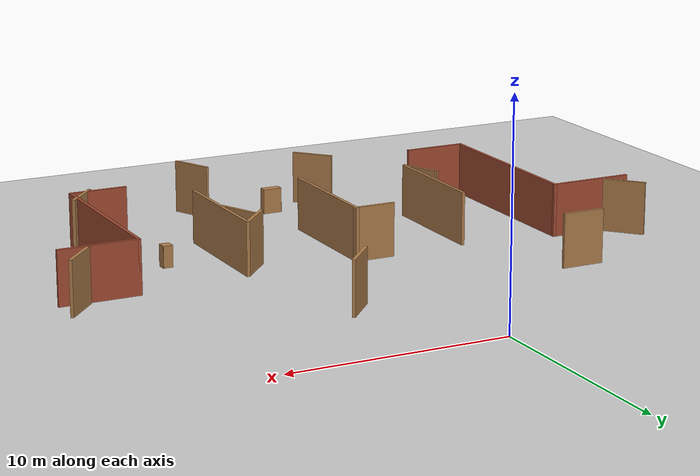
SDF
<sdf version="1.6">
 <world name="default">
  <model name="ground_plane">
   <static>1</static>
   <link name="link">
    <collision name="collision">
     <geometry><plane><normal>0 0 1</normal><size>100 100</size></plane></geometry>
     <surface><friction><ode><mu>100</mu><mu2>50</mu2></ode></friction></surface>
    </collision>
    <visual name="visual">
     <cast_shadows>0</cast_shadows>
     <geometry><plane><normal>0 0 1</normal><size>100 100</size></plane></geometry>
     <material>
      <script><uri>file://media/materials/scripts/gazebo.material</uri><name>Gazebo/Grey</name></script>
     </material>
    </visual>
   </link>
  </model>
  <model name="bookshelf">
   <static>1</static>
   <link name="link">
    <inertial><mass>1</mass></inertial>
    <collision name="back">
     <pose>0 0.005 0.6 0 -0 0</pose>
     <geometry><box><size>0.9 0.01 1.2</size></box></geometry>
    </collision>
    <visual name="visual1">
     <pose>0 0.005 0.6 0 -0 0</pose>
     <geometry><box><size>0.9 0.01 1.2</size></box></geometry>
     <material>
      <script><uri>file://media/materials/scripts/gazebo.material</uri><name>Gazebo/Wood</name></script>
     </material>
    </visual>
    <collision name="left_side">
     <pose>0.45 -0.195 0.6 0 -0 0</pose>
     <geometry><box><size>0.02 0.4 1.2</size></box></geometry>
    </collision>
    <visual name="visual2">
     <pose>0.45 -0.195 0.6 0 -0 0</pose>
     <geometry><box><size>0.02 0.4 1.2</size></box></geometry>
     <material>
      <script><uri>file://media/materials/scripts/gazebo.material</uri><name>Gazebo/Wood</name></script>
     </material>
    </visual>
    <collision name="right_side">
     <pose>-0.45 -0.195 0.6 0 -0 0</pose>
     <geometry><box><size>0.02 0.4 1.2</size></box></geometry>
    </collision>
    <visual name="visual3">
     <pose>-0.45 -0.195 0.6 0 -0 0</pose>
     <geometry><box><size>0.02 0.4 1.2</size></box></geometry>
     <material>
      <script><uri>file://media/materials/scripts/gazebo.material</uri><name>Gazebo/Wood</name></script>
     </material>
    </visual>
    <collision name="bottom">
     <pose>0 -0.195 0.03 0 -0 0</pose>
     <geometry><box><size>0.88 0.4 0.06</size></box></geometry>
    </collision>
    <visual name="visual4">
     <pose>0 -0.195 0.03 0 -0 0</pose>
     <geometry><box><size>0.88 0.4 0.06</size></box></geometry>
     <material>
      <script><uri>file://media/materials/scripts/gazebo.material</uri><name>Gazebo/Wood</name></script>
     </material>
    </visual>
    <collision name="top">
     <pose>0 -0.195 1.19 0 -0 0</pose>
     <geometry><box><size>0.88 0.4 0.02</size></box></geometry>
    </collision>
    <visual name="visual5">
     <pose>0 -0.195 1.19 0 -0 0</pose>
     <geometry><box><size>0.88 0.4 0.02</size></box></geometry>
     <material>
      <script><uri>file://media/materials/scripts/gazebo.material</uri><name>Gazebo/Wood</name></script>
     </material>
    </visual>
    <collision name="low_shelf">
     <pose>0 -0.195 0.43 0 -0 0</pose>
     <geometry><box><size>0.88 0.4 0.02</size></box></geometry>
    </collision>
    <visual name="visual6">
     <pose>0 -0.195 0.43 0 -0 0</pose>
     <geometry><box><size>0.88 0.4 0.02</size></box></geometry>
     <material>
      <script><uri>file://media/materials/scripts/gazebo.material</uri><name>Gazebo/Wood</name></script>
     </material>
    </visual>
    <collision name="high_shelf">
     <pose>0 -0.195 0.8 0 -0 0</pose>
     <geometry><box><size>0.88 0.4 0.02</size></box></geometry>
    </collision>
    <visual name="visual7">
     <pose>0 -0.195 0.8 0 -0 0</pose>
     <geometry><box><size>0.88 0.4 0.02</size></box></geometry>
     <material>
      <script><uri>file://media/materials/scripts/gazebo.material</uri><name>Gazebo/Wood</name></script>
     </material>
    </visual>
   </link>
   <pose>0.586546 -21.2596 0 0 -0 0</pose>
  </model>
  <model name="cabinet_3">
   <static>1</static>
   <link name="cabinet_bottom_plate">
    <inertial>
     <pose>0 0 -1 0 -0 0</pose>
     <inertia><ixx>2.05</ixx><ixy>0</ixy><ixz>0</ixz><iyy>2.05</iyy><iyz>0</iyz><izz>2.05</izz></inertia>
     <mass>25</mass>
    </inertial>
    <collision name="cabinet_bottom_plate_geom">
     <pose>0 0 0.01 0 -0 0</pose>
     <geometry><box><size>0.45 0.45 0.02</size></box></geometry>
    </collision>
    <visual name="cabinet_bottom_plate_geom_visual">
     <pose>0 0 0.01 0 -0 0</pose>
     <geometry><box><size>0.45 0.45 0.02</size></box></geometry>
     <material>
      <script><uri>file://media/materials/scripts/gazebo.material</uri><name>Gazebo/Wood</name></script>
     </material>
    </visual>
    <collision name="cabinet_bottom_plate_geom_cabinet_back_plate">
     <pose>0.235 0 0.51 0 -0 0</pose>
     <geometry><box><size>0.02 0.45 1.02</size></box></geometry>
    </collision>
    <visual name="cabinet_bottom_plate_geom_cabinet_back_plate_visual">
     <pose>0.235 0 0.51 0 -0 0</pose>
     <geometry><box><size>0.02 0.45 1.02</size></box></geometry>
     <material>
      <script><uri>file://media/materials/scripts/gazebo.material</uri><name>Gazebo/Wood</name></script>
     </material>
    </visual>
    <collision name="cabinet_bottom_plate_geom_cabinet_left_plate">
     <pose>0 0.235 0.51 0 -0 0</pose>
     <geometry><box><size>0.45 0.02 1.02</size></box></geometry>
    </collision>
    <visual name="cabinet_bottom_plate_geom_cabinet_left_plate_visual">
     <pose>0 0.235 0.51 0 -0 0</pose>
     <geometry><box><size>0.45 0.02 1.02</size></box></geometry>
     <material>
      <script><uri>file://media/materials/scripts/gazebo.material</uri><name>Gazebo/Wood</name></script>
     </material>
    </visual>
    <collision name="cabinet_bottom_plate_geom_cabinet_middle_plate">
     <pose>0 0 0.51 0 -0 0</pose>
     <geometry><box><size>0.45 0.45 0.02</size></box></geometry>
    </collision>
    <visual name="cabinet_bottom_plate_geom_cabinet_middle_plate_visual">
     <pose>0 0 0.51 0 -0 0</pose>
     <geometry><box><size>0.45 0.45 0.02</size></box></geometry>
     <material>
      <script><uri>file://media/materials/scripts/gazebo.material</uri><name>Gazebo/Wood</name></script>
     </material>
    </visual>
    <collision name="cabinet_bottom_plate_geom_cabinet_right_plate">
     <pose>0 -0.235 0.51 0 -0 0</pose>
     <geometry><box><size>0.45 0.02 1.02</size></box></geometry>
    </collision>
    <visual name="cabinet_bottom_plate_geom_cabinet_right_plate_visual">
     <pose>0 -0.235 0.51 0 -0 0</pose>
     <geometry><box><size>0.45 0.02 1.02</size></box></geometry>
     <material>
      <script><uri>file://media/materials/scripts/gazebo.material</uri><name>Gazebo/Wood</name></script>
     </material>
    </visual>
    <collision name="cabinet_bottom_plate_geom_cabinet_top_plate">
     <pose>0 0 1.01 0 -0 0</pose>
     <geometry><box><size>0.45 0.45 0.02</size></box></geometry>
    </collision>
    <visual name="cabinet_bottom_plate_geom_cabinet_top_plate_visual">
     <pose>0 0 1.01 0 -0 0</pose>
     <geometry><box><size>0.45 0.45 0.02</size></box></geometry>
     <material>
      <script><uri>file://media/materials/scripts/gazebo.material</uri><name>Gazebo/Wood</name></script>
     </material>
    </visual>
   </link>
   <pose>0.258671 -14.2311 0 0 -0 0</pose>
  </model>
  <model name="cabinet_5">
   <static>1</static>
   <link name="cabinet_bottom_plate">
    <inertial>
     <pose>0 0 -1 0 -0 0</pose>
     <inertia><ixx>2.05</ixx><ixy>0</ixy><ixz>0</ixz><iyy>2.05</iyy><iyz>0</iyz><izz>2.05</izz></inertia>
     <mass>25</mass>
    </inertial>
    <collision name="cabinet_bottom_plate_geom">
     <pose>0 0 0.01 0 -0 0</pose>
     <geometry><box><size>0.45 0.45 0.02</size></box></geometry>
    </collision>
    <visual name="cabinet_bottom_plate_geom_visual">
     <pose>0 0 0.01 0 -0 0</pose>
     <geometry><box><size>0.45 0.45 0.02</size></box></geometry>
     <material>
      <script><uri>file://media/materials/scripts/gazebo.material</uri><name>Gazebo/Wood</name></script>
     </material>
    </visual>
    <collision name="cabinet_bottom_plate_geom_cabinet_back_plate">
     <pose>0.235 0 0.51 0 -0 0</pose>
     <geometry><box><size>0.02 0.45 1.02</size></box></geometry>
    </collision>
    <visual name="cabinet_bottom_plate_geom_cabinet_back_plate_visual">
     <pose>0.235 0 0.51 0 -0 0</pose>
     <geometry><box><size>0.02 0.45 1.02</size></box></geometry>
     <material>
      <script><uri>file://media/materials/scripts/gazebo.material</uri><name>Gazebo/Wood</name></script>
     </material>
    </visual>
    <collision name="cabinet_bottom_plate_geom_cabinet_left_plate">
     <pose>0 0.235 0.51 0 -0 0</pose>
     <geometry><box><size>0.45 0.02 1.02</size></box></geometry>
    </collision>
    <visual name="cabinet_bottom_plate_geom_cabinet_left_plate_visual">
     <pose>0 0.235 0.51 0 -0 0</pose>
     <geometry><box><size>0.45 0.02 1.02</size></box></geometry>
     <material>
      <script><uri>file://media/materials/scripts/gazebo.material</uri><name>Gazebo/Wood</name></script>
     </material>
    </visual>
    <collision name="cabinet_bottom_plate_geom_cabinet_middle_plate">
     <pose>0 0 0.51 0 -0 0</pose>
     <geometry><box><size>0.45 0.45 0.02</size></box></geometry>
    </collision>
    <visual name="cabinet_bottom_plate_geom_cabinet_middle_plate_visual">
     <pose>0 0 0.51 0 -0 0</pose>
     <geometry><box><size>0.45 0.45 0.02</size></box></geometry>
     <material>
      <script><uri>file://media/materials/scripts/gazebo.material</uri><name>Gazebo/Wood</name></script>
     </material>
    </visual>
    <collision name="cabinet_bottom_plate_geom_cabinet_right_plate">
     <pose>0 -0.235 0.51 0 -0 0</pose>
     <geometry><box><size>0.45 0.02 1.02</size></box></geometry>
    </collision>
    <visual name="cabinet_bottom_plate_geom_cabinet_right_plate_visual">
     <pose>0 -0.235 0.51 0 -0 0</pose>
     <geometry><box><size>0.45 0.02 1.02</size></box></geometry>
     <material>
      <script><uri>file://media/materials/scripts/gazebo.material</uri><name>Gazebo/Wood</name></script>
     </material>
    </visual>
    <collision name="cabinet_bottom_plate_geom_cabinet_top_plate">
     <pose>0 0 1.01 0 -0 0</pose>
     <geometry><box><size>0.45 0.45 0.02</size></box></geometry>
    </collision>
    <visual name="cabinet_bottom_plate_geom_cabinet_top_plate_visual">
     <pose>0 0 1.01 0 -0 0</pose>
     <geometry><box><size>0.45 0.45 0.02</size></box></geometry>
     <material>
      <script><uri>file://media/materials/scripts/gazebo.material</uri><name>Gazebo/Wood</name></script>
     </material>
    </visual>
   </link>
   <pose>8.54924 -15.2954 0 0 -0 0</pose>
  </model>
  <model name="test_maze">
   <link name="Wall_111">
    <pose>-0.301502 -15.3165 0 0 0 -1.5708</pose>
    <visual name="Wall_111_Visual">
     <pose>0 0 1.25 0 -0 0</pose>
     <geometry><box><size>6 0.15 2.5</size></box></geometry>
     <material>
      <script><uri>file://media/materials/scripts/gazebo.material</uri><name>Gazebo/Wood</name></script>
      <ambient>1 1 1 1</ambient>
      <shader type="pixel"/>
     </material>
     <meta><layer>0</layer></meta>
    </visual>
    <collision name="Wall_111_Collision">
     <pose>0 0 1.25 0 -0 0</pose>
     <geometry><box><size>6 0.15 2.5</size></box></geometry>
     <surface>
      <friction>
       <ode><mu>1</mu><mu2>1</mu2><fdir1>0 0 0</fdir1><slip1>0</slip1><slip2>0</slip2></ode>
       <torsional>
        <coefficient>1</coefficient>
        <patch_radius>0</patch_radius>
        <surface_radius>0</surface_radius>
        <use_patch_radius>1</use_patch_radius>
        <ode><slip>0</slip></ode>
       </torsional>
      </friction>
      <bounce><restitution_coefficient>0</restitution_coefficient><threshold>1e+06</threshold></bounce>
      <contact>
       <collide_without_contact>0</collide_without_contact>
       <collide_without_contact_bitmask>1</collide_without_contact_bitmask>
       <collide_bitmask>1</collide_bitmask>
       <ode>
        <soft_cfm>0</soft_cfm>
        <soft_erp>0.2</soft_erp>
        <kp>1e+13</kp>
        <kd>1</kd>
        <max_vel>0.01</max_vel>
        <min_depth>0</min_depth>
       </ode>
       <bullet>
        <split_impulse>1</split_impulse>
        <split_impulse_penetration_threshold>-0.01</split_impulse_penetration_threshold>
        <soft_cfm>0</soft_cfm>
        <soft_erp>0.2</soft_erp>
        <kp>1e+13</kp>
        <kd>1</kd>
       </bullet>
      </contact>
     </surface>
    </collision>
   </link>
   <link name="Wall_114">
    <pose>-5.8092 -15.3766 0 0 0 -1.5708</pose>
    <visual name="Wall_114_Visual">
     <pose>0 0 1.25 0 -0 0</pose>
     <geometry><box><size>5.75 0.15 2.5</size></box></geometry>
     <material>
      <script><uri>file://media/materials/scripts/gazebo.material</uri><name>Gazebo/Wood</name></script>
      <ambient>1 1 1 1</ambient>
      <shader type="pixel"/>
     </material>
     <meta><layer>0</layer></meta>
    </visual>
    <collision name="Wall_114_Collision">
     <pose>0 0 1.25 0 -0 0</pose>
     <geometry><box><size>5.75 0.15 2.5</size></box></geometry>
     <surface>
      <friction>
       <ode><mu>1</mu><mu2>1</mu2><fdir1>0 0 0</fdir1><slip1>0</slip1><slip2>0</slip2></ode>
       <torsional>
        <coefficient>1</coefficient>
        <patch_radius>0</patch_radius>
        <surface_radius>0</surface_radius>
        <use_patch_radius>1</use_patch_radius>
        <ode><slip>0</slip></ode>
       </torsional>
      </friction>
      <bounce><restitution_coefficient>0</restitution_coefficient><threshold>1e+06</threshold></bounce>
      <contact>
       <collide_without_contact>0</collide_without_contact>
       <collide_without_contact_bitmask>1</collide_without_contact_bitmask>
       <collide_bitmask>1</collide_bitmask>
       <ode>
        <soft_cfm>0</soft_cfm>
        <soft_erp>0.2</soft_erp>
        <kp>1e+13</kp>
        <kd>1</kd>
        <max_vel>0.01</max_vel>
        <min_depth>0</min_depth>
       </ode>
       <bullet>
        <split_impulse>1</split_impulse>
        <split_impulse_penetration_threshold>-0.01</split_impulse_penetration_threshold>
        <soft_cfm>0</soft_cfm>
        <soft_erp>0.2</soft_erp>
        <kp>1e+13</kp>
        <kd>1</kd>
       </bullet>
      </contact>
     </surface>
    </collision>
   </link>
   <link name="Wall_116">
    <pose>4.95745 -15.4576 0 0 0 -1.5708</pose>
    <visual name="Wall_116_Visual">
     <pose>0 0 1.25 0 -0 0</pose>
     <geometry><box><size>6 0.15 2.5</size></box></geometry>
     <material>
      <script><uri>file://media/materials/scripts/gazebo.material</uri><name>Gazebo/Wood</name></script>
      <ambient>1 1 1 1</ambient>
      <shader type="pixel"/>
     </material>
     <meta><layer>0</layer></meta>
    </visual>
    <collision name="Wall_116_Collision">
     <pose>0 0 1.25 0 -0 0</pose>
     <geometry><box><size>6 0.15 2.5</size></box></geometry>
     <surface>
      <friction>
       <ode><mu>1</mu><mu2>1</mu2><fdir1>0 0 0</fdir1><slip1>0</slip1><slip2>0</slip2></ode>
       <torsional>
        <coefficient>1</coefficient>
        <patch_radius>0</patch_radius>
        <surface_radius>0</surface_radius>
        <use_patch_radius>1</use_patch_radius>
        <ode><slip>0</slip></ode>
       </torsional>
      </friction>
      <bounce><restitution_coefficient>0</restitution_coefficient><threshold>1e+06</threshold></bounce>
      <contact>
       <collide_without_contact>0</collide_without_contact>
       <collide_without_contact_bitmask>1</collide_without_contact_bitmask>
       <collide_bitmask>1</collide_bitmask>
       <ode>
        <soft_cfm>0</soft_cfm>
        <soft_erp>0.2</soft_erp>
        <kp>1e+13</kp>
        <kd>1</kd>
        <max_vel>0.01</max_vel>
        <min_depth>0</min_depth>
       </ode>
       <bullet>
        <split_impulse>1</split_impulse>
        <split_impulse_penetration_threshold>-0.01</split_impulse_penetration_threshold>
        <soft_cfm>0</soft_cfm>
        <soft_erp>0.2</soft_erp>
        <kp>1e+13</kp>
        <kd>1</kd>
       </bullet>
      </contact>
     </surface>
    </collision>
   </link>
   <link name="Wall_40">
    <pose>8.85605 -20.475 0 0 -0 0</pose>
    <visual name="Wall_40_Visual">
     <pose>0 0 1.25 0 -0 0</pose>
     <geometry><box><size>2.75 0.15 2.5</size></box></geometry>
     <material>
      <script><uri>file://media/materials/scripts/gazebo.material</uri><name>Gazebo/Bricks</name></script>
      <ambient>1 1 1 1</ambient>
      <shader type="pixel"/>
     </material>
     <meta><layer>0</layer></meta>
    </visual>
    <collision name="Wall_40_Collision">
     <pose>0 0 1.25 0 -0 0</pose>
     <geometry><box><size>2.75 0.15 2.5</size></box></geometry>
     <surface>
      <friction>
       <ode><mu>1</mu><mu2>1</mu2><fdir1>0 0 0</fdir1><slip1>0</slip1><slip2>0</slip2></ode>
       <torsional>
        <coefficient>1</coefficient>
        <patch_radius>0</patch_radius>
        <surface_radius>0</surface_radius>
        <use_patch_radius>1</use_patch_radius>
        <ode><slip>0</slip></ode>
       </torsional>
      </friction>
      <bounce><restitution_coefficient>0</restitution_coefficient><threshold>1e+06</threshold></bounce>
      <contact>
       <collide_without_contact>0</collide_without_contact>
       <collide_without_contact_bitmask>1</collide_without_contact_bitmask>
       <collide_bitmask>1</collide_bitmask>
       <ode>
        <soft_cfm>0</soft_cfm>
        <soft_erp>0.2</soft_erp>
        <kp>1e+13</kp>
        <kd>1</kd>
        <max_vel>0.01</max_vel>
        <min_depth>0</min_depth>
       </ode>
       <bullet>
        <split_impulse>1</split_impulse>
        <split_impulse_penetration_threshold>-0.01</split_impulse_penetration_threshold>
        <soft_cfm>0</soft_cfm>
        <soft_erp>0.2</soft_erp>
        <kp>1e+13</kp>
        <kd>1</kd>
       </bullet>
      </contact>
     </surface>
    </collision>
   </link>
   <link name="Wall_41">
    <pose>10.1561 -16.3 0 0 -0 1.5708</pose>
    <visual name="Wall_41_Visual">
     <pose>0 0 1.25 0 -0 0</pose>
     <geometry><box><size>8.5 0.15 2.5</size></box></geometry>
     <material>
      <script><uri>file://media/materials/scripts/gazebo.material</uri><name>Gazebo/Bricks</name></script>
      <ambient>1 1 1 1</ambient>
      <shader type="pixel"/>
     </material>
     <meta><layer>0</layer></meta>
    </visual>
    <collision name="Wall_41_Collision">
     <pose>0 0 1.25 0 -0 0</pose>
     <geometry><box><size>8.5 0.15 2.5</size></box></geometry>
     <surface>
      <friction>
       <ode><mu>1</mu><mu2>1</mu2><fdir1>0 0 0</fdir1><slip1>0</slip1><slip2>0</slip2></ode>
       <torsional>
        <coefficient>1</coefficient>
        <patch_radius>0</patch_radius>
        <surface_radius>0</surface_radius>
        <use_patch_radius>1</use_patch_radius>
        <ode><slip>0</slip></ode>
       </torsional>
      </friction>
      <bounce><restitution_coefficient>0</restitution_coefficient><threshold>1e+06</threshold></bounce>
      <contact>
       <collide_without_contact>0</collide_without_contact>
       <collide_without_contact_bitmask>1</collide_without_contact_bitmask>
       <collide_bitmask>1</collide_bitmask>
       <ode>
        <soft_cfm>0</soft_cfm>
        <soft_erp>0.2</soft_erp>
        <kp>1e+13</kp>
        <kd>1</kd>
        <max_vel>0.01</max_vel>
        <min_depth>0</min_depth>
       </ode>
       <bullet>
        <split_impulse>1</split_impulse>
        <split_impulse_penetration_threshold>-0.01</split_impulse_penetration_threshold>
        <soft_cfm>0</soft_cfm>
        <soft_erp>0.2</soft_erp>
        <kp>1e+13</kp>
        <kd>1</kd>
       </bullet>
      </contact>
     </surface>
    </collision>
   </link>
   <link name="Wall_42">
    <pose>11.9561 -12.125 0 0 -0 0</pose>
    <visual name="Wall_42_Visual">
     <pose>0 0 1.25 0 -0 0</pose>
     <geometry><box><size>3.75 0.15 2.5</size></box></geometry>
     <material>
      <script><uri>file://media/materials/scripts/gazebo.material</uri><name>Gazebo/Bricks</name></script>
      <ambient>1 1 1 1</ambient>
      <shader type="pixel"/>
     </material>
     <meta><layer>0</layer></meta>
    </visual>
    <collision name="Wall_42_Collision">
     <pose>0 0 1.25 0 -0 0</pose>
     <geometry><box><size>3.75 0.15 2.5</size></box></geometry>
     <surface>
      <friction>
       <ode><mu>1</mu><mu2>1</mu2><fdir1>0 0 0</fdir1><slip1>0</slip1><slip2>0</slip2></ode>
       <torsional>
        <coefficient>1</coefficient>
        <patch_radius>0</patch_radius>
        <surface_radius>0</surface_radius>
        <use_patch_radius>1</use_patch_radius>
        <ode><slip>0</slip></ode>
       </torsional>
      </friction>
      <bounce><restitution_coefficient>0</restitution_coefficient><threshold>1e+06</threshold></bounce>
      <contact>
       <collide_without_contact>0</collide_without_contact>
       <collide_without_contact_bitmask>1</collide_without_contact_bitmask>
       <collide_bitmask>1</collide_bitmask>
       <ode>
        <soft_cfm>0</soft_cfm>
        <soft_erp>0.2</soft_erp>
        <kp>1e+13</kp>
        <kd>1</kd>
        <max_vel>0.01</max_vel>
        <min_depth>0</min_depth>
       </ode>
       <bullet>
        <split_impulse>1</split_impulse>
        <split_impulse_penetration_threshold>-0.01</split_impulse_penetration_threshold>
        <soft_cfm>0</soft_cfm>
        <soft_erp>0.2</soft_erp>
        <kp>1e+13</kp>
        <kd>1</kd>
       </bullet>
      </contact>
     </surface>
    </collision>
   </link>
   <link name="Wall_50">
    <pose>-8.86895 -20.725 0 0 -0 3.14159</pose>
    <visual name="Wall_50_Visual">
     <pose>0 0 1.25 0 -0 0</pose>
     <geometry><box><size>3 0.15 2.5</size></box></geometry>
     <material>
      <script><uri>file://media/materials/scripts/gazebo.material</uri><name>Gazebo/Bricks</name></script>
      <ambient>1 1 1 1</ambient>
      <shader type="pixel"/>
     </material>
     <meta><layer>0</layer></meta>
    </visual>
    <collision name="Wall_50_Collision">
     <pose>0 0 1.25 0 -0 0</pose>
     <geometry><box><size>3 0.15 2.5</size></box></geometry>
     <surface>
      <friction>
       <ode><mu>1</mu><mu2>1</mu2><fdir1>0 0 0</fdir1><slip1>0</slip1><slip2>0</slip2></ode>
       <torsional>
        <coefficient>1</coefficient>
        <patch_radius>0</patch_radius>
        <surface_radius>0</surface_radius>
        <use_patch_radius>1</use_patch_radius>
        <ode><slip>0</slip></ode>
       </torsional>
      </friction>
      <bounce><restitution_coefficient>0</restitution_coefficient><threshold>1e+06</threshold></bounce>
      <contact>
       <collide_without_contact>0</collide_without_contact>
       <collide_without_contact_bitmask>1</collide_without_contact_bitmask>
       <collide_bitmask>1</collide_bitmask>
       <ode>
        <soft_cfm>0</soft_cfm>
        <soft_erp>0.2</soft_erp>
        <kp>1e+13</kp>
        <kd>1</kd>
        <max_vel>0.01</max_vel>
        <min_depth>0</min_depth>
       </ode>
       <bullet>
        <split_impulse>1</split_impulse>
        <split_impulse_penetration_threshold>-0.01</split_impulse_penetration_threshold>
        <soft_cfm>0</soft_cfm>
        <soft_erp>0.2</soft_erp>
        <kp>1e+13</kp>
        <kd>1</kd>
       </bullet>
      </contact>
     </surface>
    </collision>
   </link>
   <link name="Wall_51">
    <pose>-10.2939 -16.3 0 0 -0 1.5708</pose>
    <visual name="Wall_51_Visual">
     <pose>0 0 1.25 0 -0 0</pose>
     <geometry><box><size>9 0.15 2.5</size></box></geometry>
     <material>
      <script><uri>file://media/materials/scripts/gazebo.material</uri><name>Gazebo/Bricks</name></script>
      <ambient>1 1 1 1</ambient>
      <shader type="pixel"/>
     </material>
     <meta><layer>0</layer></meta>
    </visual>
    <collision name="Wall_51_Collision">
     <pose>0 0 1.25 0 -0 0</pose>
     <geometry><box><size>9 0.15 2.5</size></box></geometry>
     <surface>
      <friction>
       <ode><mu>1</mu><mu2>1</mu2><fdir1>0 0 0</fdir1><slip1>0</slip1><slip2>0</slip2></ode>
       <torsional>
        <coefficient>1</coefficient>
        <patch_radius>0</patch_radius>
        <surface_radius>0</surface_radius>
        <use_patch_radius>1</use_patch_radius>
        <ode><slip>0</slip></ode>
       </torsional>
      </friction>
      <bounce><restitution_coefficient>0</restitution_coefficient><threshold>1e+06</threshold></bounce>
      <contact>
       <collide_without_contact>0</collide_without_contact>
       <collide_without_contact_bitmask>1</collide_without_contact_bitmask>
       <collide_bitmask>1</collide_bitmask>
       <ode>
        <soft_cfm>0</soft_cfm>
        <soft_erp>0.2</soft_erp>
        <kp>1e+13</kp>
        <kd>1</kd>
        <max_vel>0.01</max_vel>
        <min_depth>0</min_depth>
       </ode>
       <bullet>
        <split_impulse>1</split_impulse>
        <split_impulse_penetration_threshold>-0.01</split_impulse_penetration_threshold>
        <soft_cfm>0</soft_cfm>
        <soft_erp>0.2</soft_erp>
        <kp>1e+13</kp>
        <kd>1</kd>
       </bullet>
      </contact>
     </surface>
    </collision>
   </link>
   <link name="Wall_52">
    <pose>-12.2189 -11.875 0 0 -0 3.14159</pose>
    <visual name="Wall_52_Visual">
     <pose>0 0 1.25 0 -0 0</pose>
     <geometry><box><size>4 0.15 2.5</size></box></geometry>
     <material>
      <script><uri>file://media/materials/scripts/gazebo.material</uri><name>Gazebo/Bricks</name></script>
      <ambient>1 1 1 1</ambient>
      <shader type="pixel"/>
     </material>
     <meta><layer>0</layer></meta>
    </visual>
    <collision name="Wall_52_Collision">
     <pose>0 0 1.25 0 -0 0</pose>
     <geometry><box><size>4 0.15 2.5</size></box></geometry>
     <surface>
      <friction>
       <ode><mu>1</mu><mu2>1</mu2><fdir1>0 0 0</fdir1><slip1>0</slip1><slip2>0</slip2></ode>
       <torsional>
        <coefficient>1</coefficient>
        <patch_radius>0</patch_radius>
        <surface_radius>0</surface_radius>
        <use_patch_radius>1</use_patch_radius>
        <ode><slip>0</slip></ode>
       </torsional>
      </friction>
      <bounce><restitution_coefficient>0</restitution_coefficient><threshold>1e+06</threshold></bounce>
      <contact>
       <collide_without_contact>0</collide_without_contact>
       <collide_without_contact_bitmask>1</collide_without_contact_bitmask>
       <collide_bitmask>1</collide_bitmask>
       <ode>
        <soft_cfm>0</soft_cfm>
        <soft_erp>0.2</soft_erp>
        <kp>1e+13</kp>
        <kd>1</kd>
        <max_vel>0.01</max_vel>
        <min_depth>0</min_depth>
       </ode>
       <bullet>
        <split_impulse>1</split_impulse>
        <split_impulse_penetration_threshold>-0.01</split_impulse_penetration_threshold>
        <soft_cfm>0</soft_cfm>
        <soft_erp>0.2</soft_erp>
        <kp>1e+13</kp>
        <kd>1</kd>
       </bullet>
      </contact>
     </surface>
    </collision>
   </link>
   <link name="Wall_96_clone_0_clone_clone_clone_clone_clone_clone">
    <pose>3.14501 -22.9931 0 0 -0 2</pose>
    <inertial>
     <mass>1</mass>
     <inertia><ixx>1</ixx><ixy>0</ixy><ixz>0</ixz><iyy>1</iyy><iyz>0</iyz><izz>1</izz></inertia>
    </inertial>
    <visual name="Wall_96_Visual">
     <pose>0 0 1.25 0 -0 0</pose>
     <geometry><box><size>2.0055 0.15 2.5</size></box></geometry>
     <material>
      <script><uri>file://media/materials/scripts/gazebo.material</uri><name>Gazebo/Wood</name></script>
      <ambient>1 1 1 1</ambient>
      <shader type="pixel"><normal_map>__default__</normal_map></shader>
      <diffuse>1 1 1 1</diffuse>
      <specular>0.2 0.2 0.2 1</specular>
      <emissive>0 0 0 1</emissive>
     </material>
     <meta><layer>0</layer></meta>
    </visual>
    <collision name="Wall_96_Collision">
     <pose>0 0 1.25 0 -0 0</pose>
     <geometry><box><size>2.0055 0.15 2.5</size></box></geometry>
     <surface>
      <friction>
       <ode><mu>1</mu><mu2>1</mu2><fdir1>0 0 0</fdir1><slip1>0</slip1><slip2>0</slip2></ode>
       <torsional>
        <coefficient>1</coefficient>
        <patch_radius>0</patch_radius>
        <surface_radius>0</surface_radius>
        <use_patch_radius>1</use_patch_radius>
        <ode><slip>0</slip></ode>
       </torsional>
      </friction>
      <bounce><restitution_coefficient>0</restitution_coefficient><threshold>1e+06</threshold></bounce>
      <contact>
       <collide_without_contact>0</collide_without_contact>
       <collide_without_contact_bitmask>1</collide_without_contact_bitmask>
       <collide_bitmask>1</collide_bitmask>
       <ode>
        <soft_cfm>0</soft_cfm>
        <soft_erp>0.2</soft_erp>
        <kp>1e+13</kp>
        <kd>1</kd>
        <max_vel>0.01</max_vel>
        <min_depth>0</min_depth>
       </ode>
       <bullet>
        <split_impulse>1</split_impulse>
        <split_impulse_penetration_threshold>-0.01</split_impulse_penetration_threshold>
        <soft_cfm>0</soft_cfm>
        <soft_erp>0.2</soft_erp>
        <kp>1e+13</kp>
        <kd>1</kd>
       </bullet>
      </contact>
     </surface>
    </collision>
   </link>
   <link name="Wall_96_clone_0_clone_clone_clone_clone_clone_clone_clone">
    <pose>-6.22897 -17.3679 0 0 -0 2</pose>
    <inertial>
     <mass>1</mass>
     <inertia><ixx>1</ixx><ixy>0</ixy><ixz>0</ixz><iyy>1</iyy><iyz>0</iyz><izz>1</izz></inertia>
    </inertial>
    <visual name="Wall_96_Visual">
     <pose>0 0 1.25 0 -0 0</pose>
     <geometry><box><size>2.0055 0.15 2.5</size></box></geometry>
     <material>
      <script><uri>file://media/materials/scripts/gazebo.material</uri><name>Gazebo/Wood</name></script>
      <ambient>1 1 1 1</ambient>
      <shader type="pixel"><normal_map>__default__</normal_map></shader>
      <diffuse>1 1 1 1</diffuse>
      <specular>0.2 0.2 0.2 1</specular>
      <emissive>0 0 0 1</emissive>
     </material>
     <meta><layer>0</layer></meta>
    </visual>
    <collision name="Wall_96_Collision">
     <pose>0 0 1.25 0 -0 0</pose>
     <geometry><box><size>2.0055 0.15 2.5</size></box></geometry>
     <surface>
      <friction>
       <ode><mu>1</mu><mu2>1</mu2><fdir1>0 0 0</fdir1><slip1>0</slip1><slip2>0</slip2></ode>
       <torsional>
        <coefficient>1</coefficient>
        <patch_radius>0</patch_radius>
        <surface_radius>0</surface_radius>
        <use_patch_radius>1</use_patch_radius>
        <ode><slip>0</slip></ode>
       </torsional>
      </friction>
      <bounce><restitution_coefficient>0</restitution_coefficient><threshold>1e+06</threshold></bounce>
      <contact>
       <collide_without_contact>0</collide_without_contact>
       <collide_without_contact_bitmask>1</collide_without_contact_bitmask>
       <collide_bitmask>1</collide_bitmask>
       <ode>
        <soft_cfm>0</soft_cfm>
        <soft_erp>0.2</soft_erp>
        <kp>1e+13</kp>
        <kd>1</kd>
        <max_vel>0.01</max_vel>
        <min_depth>0</min_depth>
       </ode>
       <bullet>
        <split_impulse>1</split_impulse>
        <split_impulse_penetration_threshold>-0.01</split_impulse_penetration_threshold>
        <soft_cfm>0</soft_cfm>
        <soft_erp>0.2</soft_erp>
        <kp>1e+13</kp>
        <kd>1</kd>
       </bullet>
      </contact>
     </surface>
    </collision>
   </link>
   <link name="Wall_96_clone_0_clone_clone_clone_clone_clone_clone_clone_0">
    <pose>4.48846 -14.5614 0 0 -0 2</pose>
    <inertial>
     <mass>1</mass>
     <inertia><ixx>1</ixx><ixy>0</ixy><ixz>0</ixz><iyy>1</iyy><iyz>0</iyz><izz>1</izz></inertia>
    </inertial>
    <visual name="Wall_96_Visual">
     <pose>0 0 1.25 0 -0 0</pose>
     <geometry><box><size>2.0055 0.15 2.5</size></box></geometry>
     <material>
      <script><uri>file://media/materials/scripts/gazebo.material</uri><name>Gazebo/Wood</name></script>
      <ambient>1 1 1 1</ambient>
      <shader type="pixel"><normal_map>__default__</normal_map></shader>
      <diffuse>1 1 1 1</diffuse>
      <specular>0.2 0.2 0.2 1</specular>
      <emissive>0 0 0 1</emissive>
     </material>
     <meta><layer>0</layer></meta>
    </visual>
    <collision name="Wall_96_Collision">
     <pose>0 0 1.25 0 -0 0</pose>
     <geometry><box><size>2.0055 0.15 2.5</size></box></geometry>
     <surface>
      <friction>
       <ode><mu>1</mu><mu2>1</mu2><fdir1>0 0 0</fdir1><slip1>0</slip1><slip2>0</slip2></ode>
       <torsional>
        <coefficient>1</coefficient>
        <patch_radius>0</patch_radius>
        <surface_radius>0</surface_radius>
        <use_patch_radius>1</use_patch_radius>
        <ode><slip>0</slip></ode>
       </torsional>
      </friction>
      <bounce><restitution_coefficient>0</restitution_coefficient><threshold>1e+06</threshold></bounce>
      <contact>
       <collide_without_contact>0</collide_without_contact>
       <collide_without_contact_bitmask>1</collide_without_contact_bitmask>
       <collide_bitmask>1</collide_bitmask>
       <ode>
        <soft_cfm>0</soft_cfm>
        <soft_erp>0.2</soft_erp>
        <kp>1e+13</kp>
        <kd>1</kd>
        <max_vel>0.01</max_vel>
        <min_depth>0</min_depth>
       </ode>
       <bullet>
        <split_impulse>1</split_impulse>
        <split_impulse_penetration_threshold>-0.01</split_impulse_penetration_threshold>
        <soft_cfm>0</soft_cfm>
        <soft_erp>0.2</soft_erp>
        <kp>1e+13</kp>
        <kd>1</kd>
       </bullet>
      </contact>
     </surface>
    </collision>
   </link>
   <link name="Wall_96_clone_1_clone_1_clone_clone">
    <pose>2.80794 -6.01073 0 0 0 -2.3</pose>
    <inertial>
     <mass>1</mass>
     <inertia><ixx>1</ixx><ixy>0</ixy><ixz>0</ixz><iyy>1</iyy><iyz>0</iyz><izz>1</izz></inertia>
    </inertial>
    <visual name="Wall_96_Visual">
     <pose>0 0 1.25 0 -0 0</pose>
     <geometry><box><size>2.0055 0.15 2.5</size></box></geometry>
     <material>
      <script><uri>file://media/materials/scripts/gazebo.material</uri><name>Gazebo/Wood</name></script>
      <ambient>1 1 1 1</ambient>
      <shader type="pixel"><normal_map>__default__</normal_map></shader>
      <diffuse>1 1 1 1</diffuse>
      <specular>0.2 0.2 0.2 1</specular>
      <emissive>0 0 0 1</emissive>
     </material>
     <meta><layer>0</layer></meta>
    </visual>
    <collision name="Wall_96_Collision">
     <pose>0 0 1.25 0 -0 0</pose>
     <geometry><box><size>2.0055 0.15 2.5</size></box></geometry>
     <surface>
      <friction>
       <ode><mu>1</mu><mu2>1</mu2><fdir1>0 0 0</fdir1><slip1>0</slip1><slip2>0</slip2></ode>
       <torsional>
        <coefficient>1</coefficient>
        <patch_radius>0</patch_radius>
        <surface_radius>0</surface_radius>
        <use_patch_radius>1</use_patch_radius>
        <ode><slip>0</slip></ode>
       </torsional>
      </friction>
      <bounce><restitution_coefficient>0</restitution_coefficient><threshold>1e+06</threshold></bounce>
      <contact>
       <collide_without_contact>0</collide_without_contact>
       <collide_without_contact_bitmask>1</collide_without_contact_bitmask>
       <collide_bitmask>1</collide_bitmask>
       <ode>
        <soft_cfm>0</soft_cfm>
        <soft_erp>0.2</soft_erp>
        <kp>1e+13</kp>
        <kd>1</kd>
        <max_vel>0.01</max_vel>
        <min_depth>0</min_depth>
       </ode>
       <bullet>
        <split_impulse>1</split_impulse>
        <split_impulse_penetration_threshold>-0.01</split_impulse_penetration_threshold>
        <soft_cfm>0</soft_cfm>
        <soft_erp>0.2</soft_erp>
        <kp>1e+13</kp>
        <kd>1</kd>
       </bullet>
      </contact>
     </surface>
    </collision>
   </link>
   <link name="Wall_96_clone_1_clone_1_clone_clone_clone">
    <pose>4.26508 -13.2711 0 0 0 -2.3</pose>
    <inertial>
     <mass>1</mass>
     <inertia><ixx>1</ixx><ixy>0</ixy><ixz>0</ixz><iyy>1</iyy><iyz>0</iyz><izz>1</izz></inertia>
    </inertial>
    <visual name="Wall_96_Visual">
     <pose>0 0 1.25 0 -0 0</pose>
     <geometry><box><size>2.0055 0.15 2.5</size></box></geometry>
     <material>
      <script><uri>file://media/materials/scripts/gazebo.material</uri><name>Gazebo/Wood</name></script>
      <ambient>1 1 1 1</ambient>
      <shader type="pixel"><normal_map>__default__</normal_map></shader>
      <diffuse>1 1 1 1</diffuse>
      <specular>0.2 0.2 0.2 1</specular>
      <emissive>0 0 0 1</emissive>
     </material>
     <meta><layer>0</layer></meta>
    </visual>
    <collision name="Wall_96_Collision">
     <pose>0 0 1.25 0 -0 0</pose>
     <geometry><box><size>2.0055 0.15 2.5</size></box></geometry>
     <surface>
      <friction>
       <ode><mu>1</mu><mu2>1</mu2><fdir1>0 0 0</fdir1><slip1>0</slip1><slip2>0</slip2></ode>
       <torsional>
        <coefficient>1</coefficient>
        <patch_radius>0</patch_radius>
        <surface_radius>0</surface_radius>
        <use_patch_radius>1</use_patch_radius>
        <ode><slip>0</slip></ode>
       </torsional>
      </friction>
      <bounce><restitution_coefficient>0</restitution_coefficient><threshold>1e+06</threshold></bounce>
      <contact>
       <collide_without_contact>0</collide_without_contact>
       <collide_without_contact_bitmask>1</collide_without_contact_bitmask>
       <collide_bitmask>1</collide_bitmask>
       <ode>
        <soft_cfm>0</soft_cfm>
        <soft_erp>0.2</soft_erp>
        <kp>1e+13</kp>
        <kd>1</kd>
        <max_vel>0.01</max_vel>
        <min_depth>0</min_depth>
       </ode>
       <bullet>
        <split_impulse>1</split_impulse>
        <split_impulse_penetration_threshold>-0.01</split_impulse_penetration_threshold>
        <soft_cfm>0</soft_cfm>
        <soft_erp>0.2</soft_erp>
        <kp>1e+13</kp>
        <kd>1</kd>
       </bullet>
      </contact>
     </surface>
    </collision>
   </link>
   <link name="Wall_96_clone_1_clone_1_clone_clone_clone_0">
    <pose>9.79154 -20.0522 0 0 0 -2.3</pose>
    <inertial>
     <mass>1</mass>
     <inertia><ixx>1</ixx><ixy>0</ixy><ixz>0</ixz><iyy>1</iyy><iyz>0</iyz><izz>1</izz></inertia>
    </inertial>
    <visual name="Wall_96_Visual">
     <pose>0 0 1.25 0 -0 0</pose>
     <geometry><box><size>2.0055 0.15 2.5</size></box></geometry>
     <material>
      <script><uri>file://media/materials/scripts/gazebo.material</uri><name>Gazebo/Wood</name></script>
      <ambient>1 1 1 1</ambient>
      <shader type="pixel"><normal_map>__default__</normal_map></shader>
      <diffuse>1 1 1 1</diffuse>
      <specular>0.2 0.2 0.2 1</specular>
      <emissive>0 0 0 1</emissive>
     </material>
     <meta><layer>0</layer></meta>
    </visual>
    <collision name="Wall_96_Collision">
     <pose>0 0 1.25 0 -0 0</pose>
     <geometry><box><size>2.0055 0.15 2.5</size></box></geometry>
     <surface>
      <friction>
       <ode><mu>1</mu><mu2>1</mu2><fdir1>0 0 0</fdir1><slip1>0</slip1><slip2>0</slip2></ode>
       <torsional>
        <coefficient>1</coefficient>
        <patch_radius>0</patch_radius>
        <surface_radius>0</surface_radius>
        <use_patch_radius>1</use_patch_radius>
        <ode><slip>0</slip></ode>
       </torsional>
      </friction>
      <bounce><restitution_coefficient>0</restitution_coefficient><threshold>1e+06</threshold></bounce>
      <contact>
       <collide_without_contact>0</collide_without_contact>
       <collide_without_contact_bitmask>1</collide_without_contact_bitmask>
       <collide_bitmask>1</collide_bitmask>
       <ode>
        <soft_cfm>0</soft_cfm>
        <soft_erp>0.2</soft_erp>
        <kp>1e+13</kp>
        <kd>1</kd>
        <max_vel>0.01</max_vel>
        <min_depth>0</min_depth>
       </ode>
       <bullet>
        <split_impulse>1</split_impulse>
        <split_impulse_penetration_threshold>-0.01</split_impulse_penetration_threshold>
        <soft_cfm>0</soft_cfm>
        <soft_erp>0.2</soft_erp>
        <kp>1e+13</kp>
        <kd>1</kd>
       </bullet>
      </contact>
     </surface>
    </collision>
   </link>
   <link name="Wall_96_clone_1_clone_1_clone_clone_clone_clone">
    <pose>13.1426 -11.2407 0 0 0 -2.3</pose>
    <inertial>
     <mass>1</mass>
     <inertia><ixx>1</ixx><ixy>0</ixy><ixz>0</ixz><iyy>1</iyy><iyz>0</iyz><izz>1</izz></inertia>
    </inertial>
    <visual name="Wall_96_Visual">
     <pose>0 0 1.25 0 -0 0</pose>
     <geometry><box><size>2.0055 0.15 2.5</size></box></geometry>
     <material>
      <script><uri>file://media/materials/scripts/gazebo.material</uri><name>Gazebo/Wood</name></script>
      <ambient>1 1 1 1</ambient>
      <shader type="pixel"><normal_map>__default__</normal_map></shader>
      <diffuse>1 1 1 1</diffuse>
      <specular>0.2 0.2 0.2 1</specular>
      <emissive>0 0 0 1</emissive>
     </material>
     <meta><layer>0</layer></meta>
    </visual>
    <collision name="Wall_96_Collision">
     <pose>0 0 1.25 0 -0 0</pose>
     <geometry><box><size>2.0055 0.15 2.5</size></box></geometry>
     <surface>
      <friction>
       <ode><mu>1</mu><mu2>1</mu2><fdir1>0 0 0</fdir1><slip1>0</slip1><slip2>0</slip2></ode>
       <torsional>
        <coefficient>1</coefficient>
        <patch_radius>0</patch_radius>
        <surface_radius>0</surface_radius>
        <use_patch_radius>1</use_patch_radius>
        <ode><slip>0</slip></ode>
       </torsional>
      </friction>
      <bounce><restitution_coefficient>0</restitution_coefficient><threshold>1e+06</threshold></bounce>
      <contact>
       <collide_without_contact>0</collide_without_contact>
       <collide_without_contact_bitmask>1</collide_without_contact_bitmask>
       <collide_bitmask>1</collide_bitmask>
       <ode>
        <soft_cfm>0</soft_cfm>
        <soft_erp>0.2</soft_erp>
        <kp>1e+13</kp>
        <kd>1</kd>
        <max_vel>0.01</max_vel>
        <min_depth>0</min_depth>
       </ode>
       <bullet>
        <split_impulse>1</split_impulse>
        <split_impulse_penetration_threshold>-0.01</split_impulse_penetration_threshold>
        <soft_cfm>0</soft_cfm>
        <soft_erp>0.2</soft_erp>
        <kp>1e+13</kp>
        <kd>1</kd>
       </bullet>
      </contact>
     </surface>
    </collision>
   </link>
   <link name="Wall_96_clone_1_clone_clone_0_clone_clone_clone_0">
    <pose>-8.94748 -7.33653 0 0 -0 0</pose>
    <inertial>
     <mass>1</mass>
     <inertia><ixx>1</ixx><ixy>0</ixy><ixz>0</ixz><iyy>1</iyy><iyz>0</iyz><izz>1</izz></inertia>
    </inertial>
    <visual name="Wall_96_Visual">
     <pose>0 0 1.25 0 -0 0</pose>
     <geometry><box><size>2.0055 0.15 2.5</size></box></geometry>
     <material>
      <script><uri>file://media/materials/scripts/gazebo.material</uri><name>Gazebo/Wood</name></script>
      <ambient>1 1 1 1</ambient>
      <shader type="pixel"><normal_map>__default__</normal_map></shader>
      <diffuse>1 1 1 1</diffuse>
      <specular>0.2 0.2 0.2 1</specular>
      <emissive>0 0 0 1</emissive>
     </material>
     <meta><layer>0</layer></meta>
    </visual>
    <collision name="Wall_96_Collision">
     <pose>0 0 1.25 0 -0 0</pose>
     <geometry><box><size>2.0055 0.15 2.5</size></box></geometry>
     <surface>
      <friction>
       <ode><mu>1</mu><mu2>1</mu2><fdir1>0 0 0</fdir1><slip1>0</slip1><slip2>0</slip2></ode>
       <torsional>
        <coefficient>1</coefficient>
        <patch_radius>0</patch_radius>
        <surface_radius>0</surface_radius>
        <use_patch_radius>1</use_patch_radius>
        <ode><slip>0</slip></ode>
       </torsional>
      </friction>
      <bounce><restitution_coefficient>0</restitution_coefficient><threshold>1e+06</threshold></bounce>
      <contact>
       <collide_without_contact>0</collide_without_contact>
       <collide_without_contact_bitmask>1</collide_without_contact_bitmask>
       <collide_bitmask>1</collide_bitmask>
       <ode>
        <soft_cfm>0</soft_cfm>
        <soft_erp>0.2</soft_erp>
        <kp>1e+13</kp>
        <kd>1</kd>
        <max_vel>0.01</max_vel>
        <min_depth>0</min_depth>
       </ode>
       <bullet>
        <split_impulse>1</split_impulse>
        <split_impulse_penetration_threshold>-0.01</split_impulse_penetration_threshold>
        <soft_cfm>0</soft_cfm>
        <soft_erp>0.2</soft_erp>
        <kp>1e+13</kp>
        <kd>1</kd>
       </bullet>
      </contact>
     </surface>
    </collision>
   </link>
   <link name="Wall_96_clone_1_clone_clone_0_clone_clone_clone_1">
    <pose>-1.16778 -12.4302 0 0 -0 0</pose>
    <inertial>
     <mass>1</mass>
     <inertia><ixx>1</ixx><ixy>0</ixy><ixz>0</ixz><iyy>1</iyy><iyz>0</iyz><izz>1</izz></inertia>
    </inertial>
    <visual name="Wall_96_Visual">
     <pose>0 0 1.25 0 -0 0</pose>
     <geometry><box><size>2.0055 0.15 2.5</size></box></geometry>
     <material>
      <script><uri>file://media/materials/scripts/gazebo.material</uri><name>Gazebo/Wood</name></script>
      <ambient>1 1 1 1</ambient>
      <shader type="pixel"><normal_map>__default__</normal_map></shader>
      <diffuse>1 1 1 1</diffuse>
      <specular>0.2 0.2 0.2 1</specular>
      <emissive>0 0 0 1</emissive>
     </material>
     <meta><layer>0</layer></meta>
    </visual>
    <collision name="Wall_96_Collision">
     <pose>0 0 1.25 0 -0 0</pose>
     <geometry><box><size>2.0055 0.15 2.5</size></box></geometry>
     <surface>
      <friction>
       <ode><mu>1</mu><mu2>1</mu2><fdir1>0 0 0</fdir1><slip1>0</slip1><slip2>0</slip2></ode>
       <torsional>
        <coefficient>1</coefficient>
        <patch_radius>0</patch_radius>
        <surface_radius>0</surface_radius>
        <use_patch_radius>1</use_patch_radius>
        <ode><slip>0</slip></ode>
       </torsional>
      </friction>
      <bounce><restitution_coefficient>0</restitution_coefficient><threshold>1e+06</threshold></bounce>
      <contact>
       <collide_without_contact>0</collide_without_contact>
       <collide_without_contact_bitmask>1</collide_without_contact_bitmask>
       <collide_bitmask>1</collide_bitmask>
       <ode>
        <soft_cfm>0</soft_cfm>
        <soft_erp>0.2</soft_erp>
        <kp>1e+13</kp>
        <kd>1</kd>
        <max_vel>0.01</max_vel>
        <min_depth>0</min_depth>
       </ode>
       <bullet>
        <split_impulse>1</split_impulse>
        <split_impulse_penetration_threshold>-0.01</split_impulse_penetration_threshold>
        <soft_cfm>0</soft_cfm>
        <soft_erp>0.2</soft_erp>
        <kp>1e+13</kp>
        <kd>1</kd>
       </bullet>
      </contact>
     </surface>
    </collision>
   </link>
   <link name="Wall_96_clone_1_clone_clone_1_clone_0">
    <pose>-2.86071 -22.1716 0 0 -0 2.3</pose>
    <inertial>
     <mass>1</mass>
     <inertia><ixx>1</ixx><ixy>0</ixy><ixz>0</ixz><iyy>1</iyy><iyz>0</iyz><izz>1</izz></inertia>
    </inertial>
    <visual name="Wall_96_Visual">
     <pose>0 0 1.25 0 -0 0</pose>
     <geometry><box><size>2.0055 0.15 2.5</size></box></geometry>
     <material>
      <script><uri>file://media/materials/scripts/gazebo.material</uri><name>Gazebo/Wood</name></script>
      <ambient>1 1 1 1</ambient>
      <shader type="pixel"><normal_map>__default__</normal_map></shader>
      <diffuse>1 1 1 1</diffuse>
      <specular>0.2 0.2 0.2 1</specular>
      <emissive>0 0 0 1</emissive>
     </material>
     <meta><layer>0</layer></meta>
    </visual>
    <collision name="Wall_96_Collision">
     <pose>0 0 1.25 0 -0 0</pose>
     <geometry><box><size>2.0055 0.15 2.5</size></box></geometry>
     <surface>
      <friction>
       <ode><mu>1</mu><mu2>1</mu2><fdir1>0 0 0</fdir1><slip1>0</slip1><slip2>0</slip2></ode>
       <torsional>
        <coefficient>1</coefficient>
        <patch_radius>0</patch_radius>
        <surface_radius>0</surface_radius>
        <use_patch_radius>1</use_patch_radius>
        <ode><slip>0</slip></ode>
       </torsional>
      </friction>
      <bounce><restitution_coefficient>0</restitution_coefficient><threshold>1e+06</threshold></bounce>
      <contact>
       <collide_without_contact>0</collide_without_contact>
       <collide_without_contact_bitmask>1</collide_without_contact_bitmask>
       <collide_bitmask>1</collide_bitmask>
       <ode>
        <soft_cfm>0</soft_cfm>
        <soft_erp>0.2</soft_erp>
        <kp>1e+13</kp>
        <kd>1</kd>
        <max_vel>0.01</max_vel>
        <min_depth>0</min_depth>
       </ode>
       <bullet>
        <split_impulse>1</split_impulse>
        <split_impulse_penetration_threshold>-0.01</split_impulse_penetration_threshold>
        <soft_cfm>0</soft_cfm>
        <soft_erp>0.2</soft_erp>
        <kp>1e+13</kp>
        <kd>1</kd>
       </bullet>
      </contact>
     </surface>
    </collision>
   </link>
   <link name="Wall_96_clone_1_clone_clone_clone">
    <pose>-13.5197 -10.9715 0 0 -0 2.3</pose>
    <inertial>
     <mass>1</mass>
     <inertia><ixx>1</ixx><ixy>0</ixy><ixz>0</ixz><iyy>1</iyy><iyz>0</iyz><izz>1</izz></inertia>
    </inertial>
    <visual name="Wall_96_Visual">
     <pose>0 0 1.25 0 -0 0</pose>
     <geometry><box><size>2.0055 0.15 2.5</size></box></geometry>
     <material>
      <script><uri>file://media/materials/scripts/gazebo.material</uri><name>Gazebo/Wood</name></script>
      <ambient>1 1 1 1</ambient>
      <shader type="pixel"><normal_map>__default__</normal_map></shader>
      <diffuse>1 1 1 1</diffuse>
      <specular>0.2 0.2 0.2 1</specular>
      <emissive>0 0 0 1</emissive>
     </material>
     <meta><layer>0</layer></meta>
    </visual>
    <collision name="Wall_96_Collision">
     <pose>0 0 1.25 0 -0 0</pose>
     <geometry><box><size>2.0055 0.15 2.5</size></box></geometry>
     <surface>
      <friction>
       <ode><mu>1</mu><mu2>1</mu2><fdir1>0 0 0</fdir1><slip1>0</slip1><slip2>0</slip2></ode>
       <torsional>
        <coefficient>1</coefficient>
        <patch_radius>0</patch_radius>
        <surface_radius>0</surface_radius>
        <use_patch_radius>1</use_patch_radius>
        <ode><slip>0</slip></ode>
       </torsional>
      </friction>
      <bounce><restitution_coefficient>0</restitution_coefficient><threshold>1e+06</threshold></bounce>
      <contact>
       <collide_without_contact>0</collide_without_contact>
       <collide_without_contact_bitmask>1</collide_without_contact_bitmask>
       <collide_bitmask>1</collide_bitmask>
       <ode>
        <soft_cfm>0</soft_cfm>
        <soft_erp>0.2</soft_erp>
        <kp>1e+13</kp>
        <kd>1</kd>
        <max_vel>0.01</max_vel>
        <min_depth>0</min_depth>
       </ode>
       <bullet>
        <split_impulse>1</split_impulse>
        <split_impulse_penetration_threshold>-0.01</split_impulse_penetration_threshold>
        <soft_cfm>0</soft_cfm>
        <soft_erp>0.2</soft_erp>
        <kp>1e+13</kp>
        <kd>1</kd>
       </bullet>
      </contact>
     </surface>
    </collision>
   </link>
   <static>1</static>
   <pose>0.982774 0.2292 0 0 -0 0</pose>
  </model>
 </world>
</sdf>
